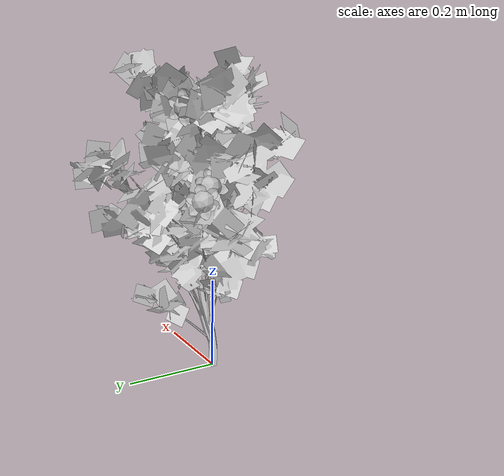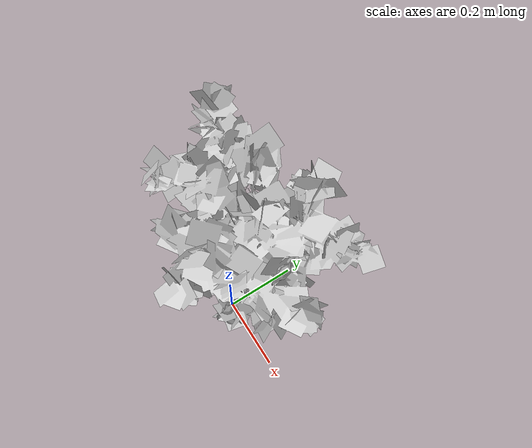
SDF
<?xml version="1.0" ?>
<sdf version="1.6">
  <model name="tree-flowers">
    <!--Skew-Seed:1919820307-->
    <static>true</static>
    <link name="link"/>
    <include>
      <uri>model://tree-mesh</uri>
      <pose>0 0 0 0 0 0</pose>
    </include>
    <joint name="tree_joint" type="fixed">
      <child>tree-mesh::link</child>
      <parent>link</parent>
    </joint>
    <include>
      <name>bramble_0</name>
      <uri>model://bramble</uri>
      <pose> -0.13928306188463246 0.09991341423529942 0.4095509232896656 -2.5201957476229913 1.897591392455775 0.0</pose>
    </include>
    <joint name="flower_joint_0" type="fixed">
      <child>bramble_0::flower_link</child>
      <parent>link</parent>
    </joint>
    <include>
      <name>bramble_1</name>
      <uri>model://bramble</uri>
      <pose> 0.10375584058029033 0.05808123235280789 0.50042465524531 -0.1832395586490787 1.4331832192370806 0.0</pose>
    </include>
    <joint name="flower_joint_1" type="fixed">
      <child>bramble_1::flower_link</child>
      <parent>link</parent>
    </joint>
    <include>
      <name>bramble_2</name>
      <uri>model://bramble</uri>
      <pose> -0.12595890985163813 0.07897182205918311 0.43415350068645364 -3.04969122011854 2.08425927056253 0.0</pose>
    </include>
    <joint name="flower_joint_2" type="fixed">
      <child>bramble_2::flower_link</child>
      <parent>link</parent>
    </joint>
    <include>
      <name>bramble_3</name>
      <uri>model://bramble</uri>
      <pose> -0.10524144137213826 0.11918224329285684 0.5826594531752937 -2.3098543889534913 1.5670107410049958 0.0</pose>
    </include>
    <joint name="flower_joint_3" type="fixed">
      <child>bramble_3::flower_link</child>
      <parent>link</parent>
    </joint>
    <include>
      <name>bramble_4</name>
      <uri>model://bramble</uri>
      <pose> 0.09383848808456546 -0.04949531377859212 0.31706405595230597 0.9348358229141984 1.580148774346991 0.0</pose>
    </include>
    <joint name="flower_joint_4" type="fixed">
      <child>bramble_4::flower_link</child>
      <parent>link</parent>
    </joint>
    <include>
      <name>bramble_5</name>
      <uri>model://bramble</uri>
      <pose> -0.06909501665079115 -0.03514516426308655 0.46007065210992404 -3.9272712164464343 1.0050375779961436 0.0</pose>
    </include>
    <joint name="flower_joint_5" type="fixed">
      <child>bramble_5::flower_link</child>
      <parent>link</parent>
    </joint>
    <include>
      <name>bramble_6</name>
      <uri>model://bramble</uri>
      <pose> 0.07467019128047019 -0.05340813147659963 0.346903667535421 -0.15428595816567303 1.5731080210672674 0.0</pose>
    </include>
    <joint name="flower_joint_6" type="fixed">
      <child>bramble_6::flower_link</child>
      <parent>link</parent>
    </joint>
    <include>
      <name>bramble_7</name>
      <uri>model://bramble</uri>
      <pose> 0.052118951203508304 -0.03677872636797708 0.4908107603795684 0.763303237042545 1.903808495291376 0.0</pose>
    </include>
    <joint name="flower_joint_7" type="fixed">
      <child>bramble_7::flower_link</child>
      <parent>link</parent>
    </joint>
  </model>
</sdf>

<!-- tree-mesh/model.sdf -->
<sdf version="1.6">
  <model name="tree-mesh">
    <static>true</static>
    <link name="link">

      <collision name="collision">
        <geometry>
          <mesh>
            <uri>model://tree-mesh/meshes/new_tree.dae</uri>
            <scale>0.0625 0.0625 0.0625</scale>
          </mesh>
        </geometry>
      </collision>

      <!-- simplified collision for sake of speed since leaves shouldn't be blocking anyway -->

      <visual name="leaves">
        <geometry>
          <mesh>
            <uri>model://tree-mesh/meshes/leaves.dae</uri>
            <scale>0.0325 0.0325 0.0325</scale>
          </mesh>
        </geometry>
        <material>
          <script>
            <uri>model://tree-mesh/materials/scripts/</uri>
            <uri>model://tree-mesh/materials/textures/</uri>
            <name>NewTree/Branch</name>
          </script>
        </material>
      </visual>
      <visual name="bark">
        <geometry>
          <mesh>
            <uri>model://tree-mesh/meshes/bark.dae</uri>
            <scale>0.0325 0.0325 0.0325</scale>
          </mesh>
        </geometry>
        <material>
          <script>
            <uri>model://tree-mesh/materials/scripts/</uri>
            <uri>model://tree-mesh/materials/textures/</uri>
            <name>NewTree/Bark</name>
          </script>
        </material>
      </visual>
    </link>
  </model>
</sdf>

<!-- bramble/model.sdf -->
<sdf version="1.6">
  <model name="bramble-flower">
    <static>true</static>
    <link name="flower_link">
      <collision name="body_collision">
        <geometry>
          <mesh>
            <uri>model://bramble/meshes/bramble.dae</uri>
            <scale>0.4 0.4 0.4</scale>
          </mesh>
        </geometry>
      </collision>
      <visual name="petals">
        <geometry>
          <mesh>
            <uri>model://bramble/meshes/bramble.dae</uri>
            <scale>0.4 0.4 0.4</scale>
            <submesh>
              <name>petal</name>
            </submesh>
          </mesh>
        </geometry>
        <material>
          <script>
            <uri>model://bramble/materials/scripts/</uri>
            <uri>model://bramble/materials/textures/</uri>
            <name>Bramble/Petal</name>
          </script>
        </material>
      </visual>
      <visual name="carpel">
        <geometry>
          <mesh>
            <uri>model://bramble/meshes/bramble.dae</uri>
            <scale>0.4 0.4 0.4</scale>
            <submesh>
              <name>carpel</name>
            </submesh>
          </mesh>
        </geometry>
        <material>
          <script>
            <uri>model://bramble/materials/scripts/</uri>
            <uri>model://bramble/materials/textures/</uri>
            <name>Bramble/Carpel</name>
          </script>
        </material>
      </visual>
      <visual name="stamen">
        <geometry>
          <mesh>
            <uri>model://bramble/meshes/bramble.dae</uri>
            <scale>0.4 0.4 0.4</scale>
            <submesh>
              <name>stamen</name>
            </submesh>
          </mesh>
        </geometry>
        <material>
          <script>
            <uri>model://bramble/materials/scripts/</uri>
            <uri>model://bramble/materials/textures/</uri>
            <name>Bramble/Stamen</name>
          </script>
        </material>
      </visual>
    </link>
  </model>
</sdf>
